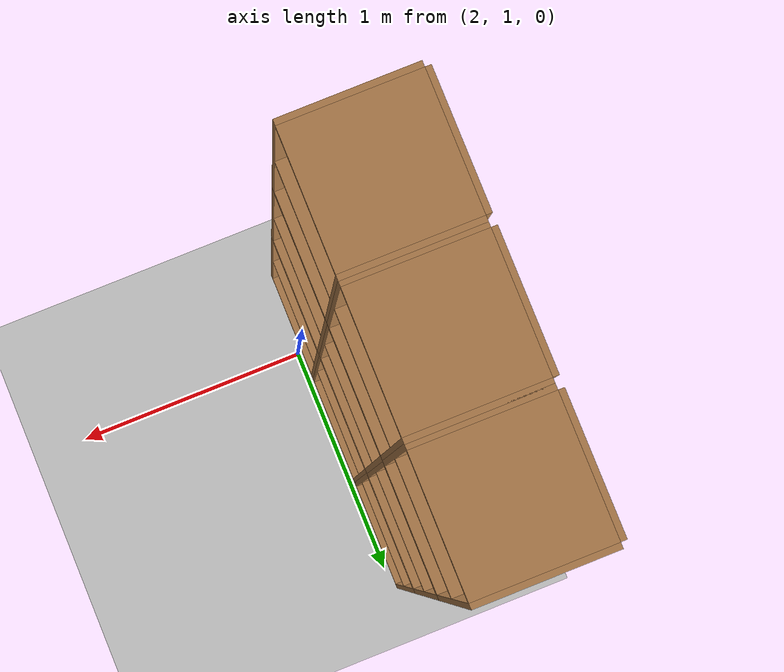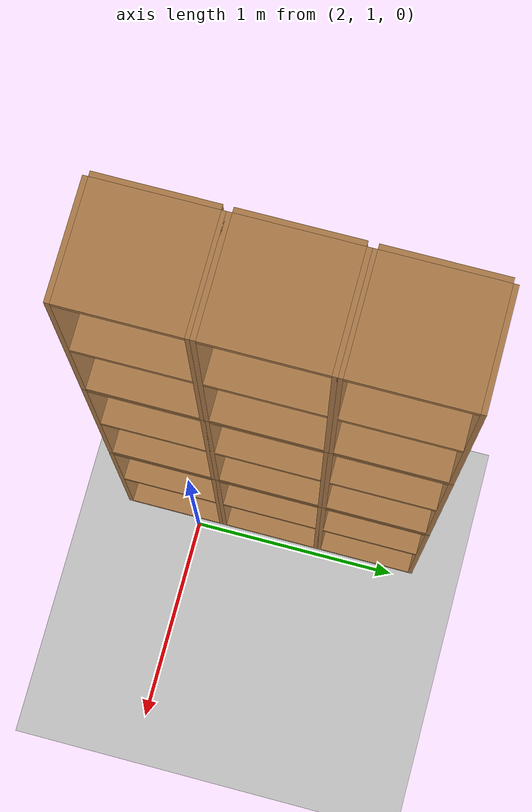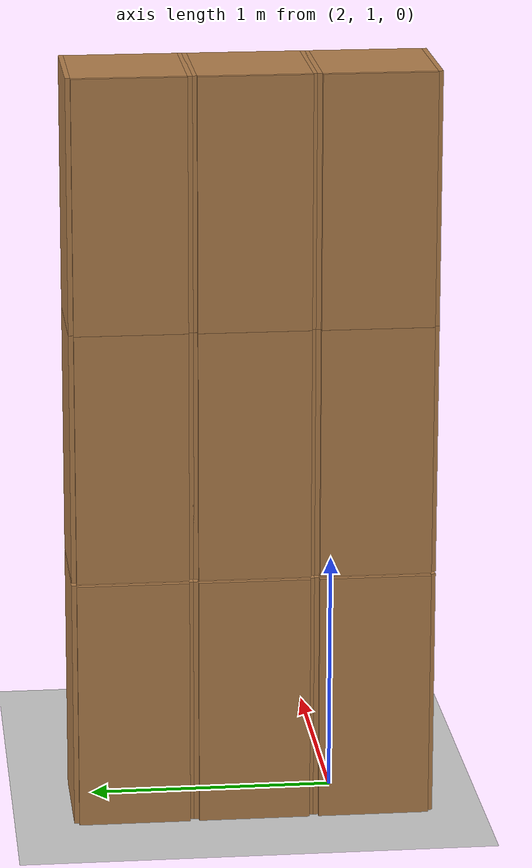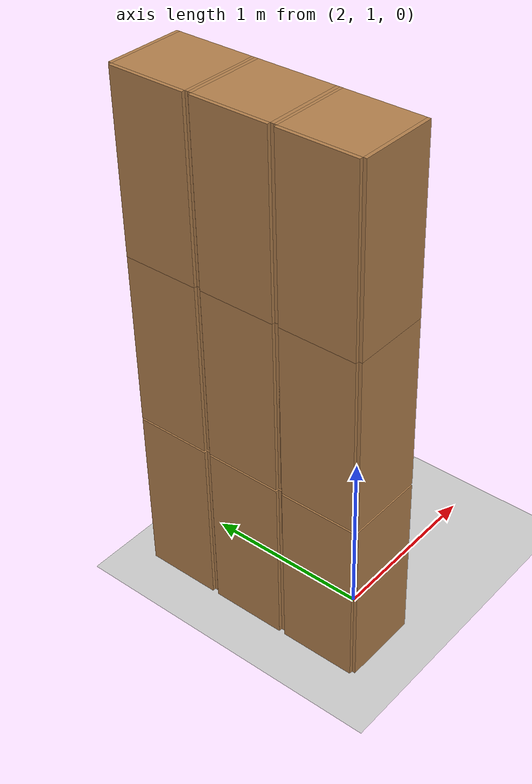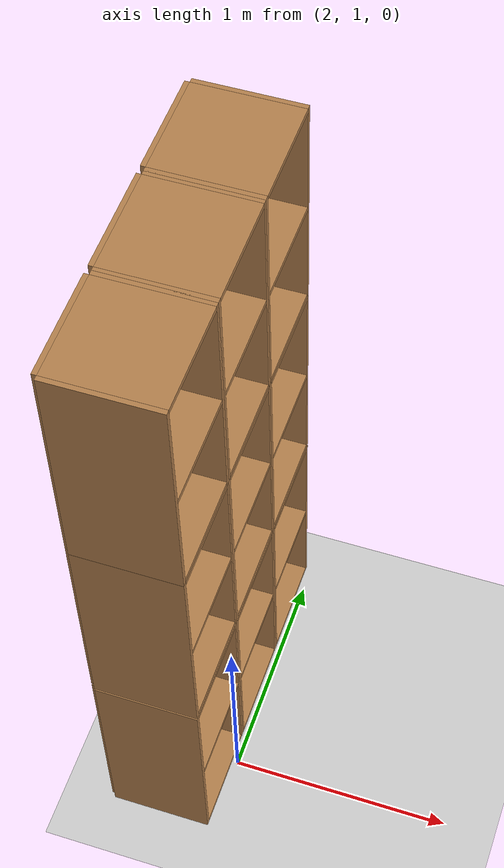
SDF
<sdf version="1.6">
 <world name="default">
  <model name="ground_plane">
   <static>1</static>
   <link name="link">
    <collision name="collision">
     <geometry><plane><normal>0 0 1</normal><size>100 100</size></plane></geometry>
     <surface>
      <contact><collide_bitmask>65535</collide_bitmask></contact>
      <friction><ode><mu>100</mu><mu2>50</mu2></ode></friction>
     </surface>
    </collision>
    <visual name="visual">
     <cast_shadows>0</cast_shadows>
     <geometry><plane><normal>0 0 1</normal><size>100 100</size></plane></geometry>
     <material>
      <script><uri>file://media/materials/scripts/gazebo.material</uri><name>Gazebo/Grey</name></script>
     </material>
    </visual>
   </link>
  </model>
  <model name="Locker18_clone_4_clone_2_clone_1_clone_clone">
   <model name="Locker18">
    <model name="Locker3">
     <model name="cabinet">
      <static>1</static>
      <link name="cabinet_bottom_plate">
       <inertial>
        <pose>0 0 -1 0 -0 0</pose>
        <inertia><ixx>2.05</ixx><ixy>0</ixy><ixz>0</ixz><iyy>2.05</iyy><iyz>0</iyz><izz>2.05</izz></inertia>
        <mass>25</mass>
       </inertial>
       <collision name="cabinet_bottom_plate_geom">
        <pose>0 0 0.01 0 -0 0</pose>
        <geometry><box><size>0.45 0.45 0.02</size></box></geometry>
       </collision>
       <visual name="cabinet_bottom_plate_geom_visual">
        <pose>0 0 0.01 0 -0 0</pose>
        <geometry><box><size>0.45 0.45 0.02</size></box></geometry>
        <material>
         <script><uri>file://media/materials/scripts/gazebo.material</uri><name>Gazebo/Wood</name></script>
        </material>
       </visual>
       <collision name="cabinet_bottom_plate_geom_cabinet_back_plate">
        <pose>0.235 0 0.51 0 -0 0</pose>
        <geometry><box><size>0.02 0.45 1.02</size></box></geometry>
       </collision>
       <visual name="cabinet_bottom_plate_geom_cabinet_back_plate_visual">
        <pose>0.235 0 0.51 0 -0 0</pose>
        <geometry><box><size>0.02 0.45 1.02</size></box></geometry>
        <material>
         <script><uri>file://media/materials/scripts/gazebo.material</uri><name>Gazebo/Wood</name></script>
        </material>
       </visual>
       <collision name="cabinet_bottom_plate_geom_cabinet_left_plate">
        <pose>0 0.235 0.51 0 -0 0</pose>
        <geometry><box><size>0.45 0.02 1.02</size></box></geometry>
       </collision>
       <visual name="cabinet_bottom_plate_geom_cabinet_left_plate_visual">
        <pose>0 0.235 0.51 0 -0 0</pose>
        <geometry><box><size>0.45 0.02 1.02</size></box></geometry>
        <material>
         <script><uri>file://media/materials/scripts/gazebo.material</uri><name>Gazebo/Wood</name></script>
        </material>
       </visual>
       <collision name="cabinet_bottom_plate_geom_cabinet_middle_plate">
        <pose>0 0 0.51 0 -0 0</pose>
        <geometry><box><size>0.45 0.45 0.02</size></box></geometry>
       </collision>
       <visual name="cabinet_bottom_plate_geom_cabinet_middle_plate_visual">
        <pose>0 0 0.51 0 -0 0</pose>
        <geometry><box><size>0.45 0.45 0.02</size></box></geometry>
        <material>
         <script><uri>file://media/materials/scripts/gazebo.material</uri><name>Gazebo/Wood</name></script>
        </material>
       </visual>
       <collision name="cabinet_bottom_plate_geom_cabinet_right_plate">
        <pose>0 -0.235 0.51 0 -0 0</pose>
        <geometry><box><size>0.45 0.02 1.02</size></box></geometry>
       </collision>
       <visual name="cabinet_bottom_plate_geom_cabinet_right_plate_visual">
        <pose>0 -0.235 0.51 0 -0 0</pose>
        <geometry><box><size>0.45 0.02 1.02</size></box></geometry>
        <material>
         <script><uri>file://media/materials/scripts/gazebo.material</uri><name>Gazebo/Wood</name></script>
        </material>
       </visual>
       <collision name="cabinet_bottom_plate_geom_cabinet_top_plate">
        <pose>0 0 1.01 0 -0 0</pose>
        <geometry><box><size>0.45 0.45 0.02</size></box></geometry>
       </collision>
       <visual name="cabinet_bottom_plate_geom_cabinet_top_plate_visual">
        <pose>0 0 1.01 0 -0 0</pose>
        <geometry><box><size>0.45 0.45 0.02</size></box></geometry>
        <material>
         <script><uri>file://media/materials/scripts/gazebo.material</uri><name>Gazebo/Wood</name></script>
        </material>
       </visual>
      </link>
      <pose>-0.676968 1.45758 0 0 -0 0</pose>
     </model>
     <model name="cabinet_clone">
      <static>1</static>
      <link name="cabinet_bottom_plate">
       <inertial>
        <pose>0 0 -1 0 -0 0</pose>
        <inertia><ixx>2.05</ixx><ixy>0</ixy><ixz>0</ixz><iyy>2.05</iyy><iyz>0</iyz><izz>2.05</izz></inertia>
        <mass>25</mass>
       </inertial>
       <collision name="cabinet_bottom_plate_geom">
        <pose>0 0 0.01 0 -0 0</pose>
        <geometry><box><size>0.45 0.45 0.02</size></box></geometry>
       </collision>
       <visual name="cabinet_bottom_plate_geom_visual">
        <pose>0 0 0.01 0 -0 0</pose>
        <geometry><box><size>0.45 0.45 0.02</size></box></geometry>
        <material>
         <script><uri>file://media/materials/scripts/gazebo.material</uri><name>Gazebo/Wood</name></script>
        </material>
       </visual>
       <collision name="cabinet_bottom_plate_geom_cabinet_back_plate">
        <pose>0.235 0 0.51 0 -0 0</pose>
        <geometry><box><size>0.02 0.45 1.02</size></box></geometry>
       </collision>
       <visual name="cabinet_bottom_plate_geom_cabinet_back_plate_visual">
        <pose>0.235 0 0.51 0 -0 0</pose>
        <geometry><box><size>0.02 0.45 1.02</size></box></geometry>
        <material>
         <script><uri>file://media/materials/scripts/gazebo.material</uri><name>Gazebo/Wood</name></script>
        </material>
       </visual>
       <collision name="cabinet_bottom_plate_geom_cabinet_left_plate">
        <pose>0 0.235 0.51 0 -0 0</pose>
        <geometry><box><size>0.45 0.02 1.02</size></box></geometry>
       </collision>
       <visual name="cabinet_bottom_plate_geom_cabinet_left_plate_visual">
        <pose>0 0.235 0.51 0 -0 0</pose>
        <geometry><box><size>0.45 0.02 1.02</size></box></geometry>
        <material>
         <script><uri>file://media/materials/scripts/gazebo.material</uri><name>Gazebo/Wood</name></script>
        </material>
       </visual>
       <collision name="cabinet_bottom_plate_geom_cabinet_middle_plate">
        <pose>0 0 0.51 0 -0 0</pose>
        <geometry><box><size>0.45 0.45 0.02</size></box></geometry>
       </collision>
       <visual name="cabinet_bottom_plate_geom_cabinet_middle_plate_visual">
        <pose>0 0 0.51 0 -0 0</pose>
        <geometry><box><size>0.45 0.45 0.02</size></box></geometry>
        <material>
         <script><uri>file://media/materials/scripts/gazebo.material</uri><name>Gazebo/Wood</name></script>
        </material>
       </visual>
       <collision name="cabinet_bottom_plate_geom_cabinet_right_plate">
        <pose>0 -0.235 0.51 0 -0 0</pose>
        <geometry><box><size>0.45 0.02 1.02</size></box></geometry>
       </collision>
       <visual name="cabinet_bottom_plate_geom_cabinet_right_plate_visual">
        <pose>0 -0.235 0.51 0 -0 0</pose>
        <geometry><box><size>0.45 0.02 1.02</size></box></geometry>
        <material>
         <script><uri>file://media/materials/scripts/gazebo.material</uri><name>Gazebo/Wood</name></script>
        </material>
       </visual>
       <collision name="cabinet_bottom_plate_geom_cabinet_top_plate">
        <pose>0 0 1.01 0 -0 0</pose>
        <geometry><box><size>0.45 0.45 0.02</size></box></geometry>
       </collision>
       <visual name="cabinet_bottom_plate_geom_cabinet_top_plate_visual">
        <pose>0 0 1.01 0 -0 0</pose>
        <geometry><box><size>0.45 0.45 0.02</size></box></geometry>
        <material>
         <script><uri>file://media/materials/scripts/gazebo.material</uri><name>Gazebo/Wood</name></script>
        </material>
       </visual>
      </link>
      <pose>-0.676968 0.970971 0 0 -0 0</pose>
     </model>
     <model name="cabinet_clone_0">
      <static>1</static>
      <link name="cabinet_bottom_plate">
       <inertial>
        <pose>0 0 -1 0 -0 0</pose>
        <inertia><ixx>2.05</ixx><ixy>0</ixy><ixz>0</ixz><iyy>2.05</iyy><iyz>0</iyz><izz>2.05</izz></inertia>
        <mass>25</mass>
       </inertial>
       <collision name="cabinet_bottom_plate_geom">
        <pose>0 0 0.01 0 -0 0</pose>
        <geometry><box><size>0.45 0.45 0.02</size></box></geometry>
       </collision>
       <visual name="cabinet_bottom_plate_geom_visual">
        <pose>0 0 0.01 0 -0 0</pose>
        <geometry><box><size>0.45 0.45 0.02</size></box></geometry>
        <material>
         <script><uri>file://media/materials/scripts/gazebo.material</uri><name>Gazebo/Wood</name></script>
        </material>
       </visual>
       <collision name="cabinet_bottom_plate_geom_cabinet_back_plate">
        <pose>0.235 0 0.51 0 -0 0</pose>
        <geometry><box><size>0.02 0.45 1.02</size></box></geometry>
       </collision>
       <visual name="cabinet_bottom_plate_geom_cabinet_back_plate_visual">
        <pose>0.235 0 0.51 0 -0 0</pose>
        <geometry><box><size>0.02 0.45 1.02</size></box></geometry>
        <material>
         <script><uri>file://media/materials/scripts/gazebo.material</uri><name>Gazebo/Wood</name></script>
        </material>
       </visual>
       <collision name="cabinet_bottom_plate_geom_cabinet_left_plate">
        <pose>0 0.235 0.51 0 -0 0</pose>
        <geometry><box><size>0.45 0.02 1.02</size></box></geometry>
       </collision>
       <visual name="cabinet_bottom_plate_geom_cabinet_left_plate_visual">
        <pose>0 0.235 0.51 0 -0 0</pose>
        <geometry><box><size>0.45 0.02 1.02</size></box></geometry>
        <material>
         <script><uri>file://media/materials/scripts/gazebo.material</uri><name>Gazebo/Wood</name></script>
        </material>
       </visual>
       <collision name="cabinet_bottom_plate_geom_cabinet_middle_plate">
        <pose>0 0 0.51 0 -0 0</pose>
        <geometry><box><size>0.45 0.45 0.02</size></box></geometry>
       </collision>
       <visual name="cabinet_bottom_plate_geom_cabinet_middle_plate_visual">
        <pose>0 0 0.51 0 -0 0</pose>
        <geometry><box><size>0.45 0.45 0.02</size></box></geometry>
        <material>
         <script><uri>file://media/materials/scripts/gazebo.material</uri><name>Gazebo/Wood</name></script>
        </material>
       </visual>
       <collision name="cabinet_bottom_plate_geom_cabinet_right_plate">
        <pose>0 -0.235 0.51 0 -0 0</pose>
        <geometry><box><size>0.45 0.02 1.02</size></box></geometry>
       </collision>
       <visual name="cabinet_bottom_plate_geom_cabinet_right_plate_visual">
        <pose>0 -0.235 0.51 0 -0 0</pose>
        <geometry><box><size>0.45 0.02 1.02</size></box></geometry>
        <material>
         <script><uri>file://media/materials/scripts/gazebo.material</uri><name>Gazebo/Wood</name></script>
        </material>
       </visual>
       <collision name="cabinet_bottom_plate_geom_cabinet_top_plate">
        <pose>0 0 1.01 0 -0 0</pose>
        <geometry><box><size>0.45 0.45 0.02</size></box></geometry>
       </collision>
       <visual name="cabinet_bottom_plate_geom_cabinet_top_plate_visual">
        <pose>0 0 1.01 0 -0 0</pose>
        <geometry><box><size>0.45 0.45 0.02</size></box></geometry>
        <material>
         <script><uri>file://media/materials/scripts/gazebo.material</uri><name>Gazebo/Wood</name></script>
        </material>
       </visual>
      </link>
      <pose>-0.676968 0.48391 0 0 -0 0</pose>
     </model>
     <static>0</static>
     <pose>0 3e-06 -1.02763 0 -0 0</pose>
    </model>
    <model name="Locker3_clone">
     <model name="cabinet">
      <static>1</static>
      <link name="cabinet_bottom_plate">
       <inertial>
        <pose>0 0 -1 0 -0 0</pose>
        <inertia><ixx>2.05</ixx><ixy>0</ixy><ixz>0</ixz><iyy>2.05</iyy><iyz>0</iyz><izz>2.05</izz></inertia>
        <mass>25</mass>
       </inertial>
       <collision name="cabinet_bottom_plate_geom">
        <pose>0 0 0.01 0 -0 0</pose>
        <geometry><box><size>0.45 0.45 0.02</size></box></geometry>
       </collision>
       <visual name="cabinet_bottom_plate_geom_visual">
        <pose>0 0 0.01 0 -0 0</pose>
        <geometry><box><size>0.45 0.45 0.02</size></box></geometry>
        <material>
         <script><uri>file://media/materials/scripts/gazebo.material</uri><name>Gazebo/Wood</name></script>
        </material>
       </visual>
       <collision name="cabinet_bottom_plate_geom_cabinet_back_plate">
        <pose>0.235 0 0.51 0 -0 0</pose>
        <geometry><box><size>0.02 0.45 1.02</size></box></geometry>
       </collision>
       <visual name="cabinet_bottom_plate_geom_cabinet_back_plate_visual">
        <pose>0.235 0 0.51 0 -0 0</pose>
        <geometry><box><size>0.02 0.45 1.02</size></box></geometry>
        <material>
         <script><uri>file://media/materials/scripts/gazebo.material</uri><name>Gazebo/Wood</name></script>
        </material>
       </visual>
       <collision name="cabinet_bottom_plate_geom_cabinet_left_plate">
        <pose>0 0.235 0.51 0 -0 0</pose>
        <geometry><box><size>0.45 0.02 1.02</size></box></geometry>
       </collision>
       <visual name="cabinet_bottom_plate_geom_cabinet_left_plate_visual">
        <pose>0 0.235 0.51 0 -0 0</pose>
        <geometry><box><size>0.45 0.02 1.02</size></box></geometry>
        <material>
         <script><uri>file://media/materials/scripts/gazebo.material</uri><name>Gazebo/Wood</name></script>
        </material>
       </visual>
       <collision name="cabinet_bottom_plate_geom_cabinet_middle_plate">
        <pose>0 0 0.51 0 -0 0</pose>
        <geometry><box><size>0.45 0.45 0.02</size></box></geometry>
       </collision>
       <visual name="cabinet_bottom_plate_geom_cabinet_middle_plate_visual">
        <pose>0 0 0.51 0 -0 0</pose>
        <geometry><box><size>0.45 0.45 0.02</size></box></geometry>
        <material>
         <script><uri>file://media/materials/scripts/gazebo.material</uri><name>Gazebo/Wood</name></script>
        </material>
       </visual>
       <collision name="cabinet_bottom_plate_geom_cabinet_right_plate">
        <pose>0 -0.235 0.51 0 -0 0</pose>
        <geometry><box><size>0.45 0.02 1.02</size></box></geometry>
       </collision>
       <visual name="cabinet_bottom_plate_geom_cabinet_right_plate_visual">
        <pose>0 -0.235 0.51 0 -0 0</pose>
        <geometry><box><size>0.45 0.02 1.02</size></box></geometry>
        <material>
         <script><uri>file://media/materials/scripts/gazebo.material</uri><name>Gazebo/Wood</name></script>
        </material>
       </visual>
       <collision name="cabinet_bottom_plate_geom_cabinet_top_plate">
        <pose>0 0 1.01 0 -0 0</pose>
        <geometry><box><size>0.45 0.45 0.02</size></box></geometry>
       </collision>
       <visual name="cabinet_bottom_plate_geom_cabinet_top_plate_visual">
        <pose>0 0 1.01 0 -0 0</pose>
        <geometry><box><size>0.45 0.45 0.02</size></box></geometry>
        <material>
         <script><uri>file://media/materials/scripts/gazebo.material</uri><name>Gazebo/Wood</name></script>
        </material>
       </visual>
      </link>
      <pose>-0.676968 1.45758 0 0 -0 0</pose>
     </model>
     <model name="cabinet_clone">
      <static>1</static>
      <link name="cabinet_bottom_plate">
       <inertial>
        <pose>0 0 -1 0 -0 0</pose>
        <inertia><ixx>2.05</ixx><ixy>0</ixy><ixz>0</ixz><iyy>2.05</iyy><iyz>0</iyz><izz>2.05</izz></inertia>
        <mass>25</mass>
       </inertial>
       <collision name="cabinet_bottom_plate_geom">
        <pose>0 0 0.01 0 -0 0</pose>
        <geometry><box><size>0.45 0.45 0.02</size></box></geometry>
       </collision>
       <visual name="cabinet_bottom_plate_geom_visual">
        <pose>0 0 0.01 0 -0 0</pose>
        <geometry><box><size>0.45 0.45 0.02</size></box></geometry>
        <material>
         <script><uri>file://media/materials/scripts/gazebo.material</uri><name>Gazebo/Wood</name></script>
        </material>
       </visual>
       <collision name="cabinet_bottom_plate_geom_cabinet_back_plate">
        <pose>0.235 0 0.51 0 -0 0</pose>
        <geometry><box><size>0.02 0.45 1.02</size></box></geometry>
       </collision>
       <visual name="cabinet_bottom_plate_geom_cabinet_back_plate_visual">
        <pose>0.235 0 0.51 0 -0 0</pose>
        <geometry><box><size>0.02 0.45 1.02</size></box></geometry>
        <material>
         <script><uri>file://media/materials/scripts/gazebo.material</uri><name>Gazebo/Wood</name></script>
        </material>
       </visual>
       <collision name="cabinet_bottom_plate_geom_cabinet_left_plate">
        <pose>0 0.235 0.51 0 -0 0</pose>
        <geometry><box><size>0.45 0.02 1.02</size></box></geometry>
       </collision>
       <visual name="cabinet_bottom_plate_geom_cabinet_left_plate_visual">
        <pose>0 0.235 0.51 0 -0 0</pose>
        <geometry><box><size>0.45 0.02 1.02</size></box></geometry>
        <material>
         <script><uri>file://media/materials/scripts/gazebo.material</uri><name>Gazebo/Wood</name></script>
        </material>
       </visual>
       <collision name="cabinet_bottom_plate_geom_cabinet_middle_plate">
        <pose>0 0 0.51 0 -0 0</pose>
        <geometry><box><size>0.45 0.45 0.02</size></box></geometry>
       </collision>
       <visual name="cabinet_bottom_plate_geom_cabinet_middle_plate_visual">
        <pose>0 0 0.51 0 -0 0</pose>
        <geometry><box><size>0.45 0.45 0.02</size></box></geometry>
        <material>
         <script><uri>file://media/materials/scripts/gazebo.material</uri><name>Gazebo/Wood</name></script>
        </material>
       </visual>
       <collision name="cabinet_bottom_plate_geom_cabinet_right_plate">
        <pose>0 -0.235 0.51 0 -0 0</pose>
        <geometry><box><size>0.45 0.02 1.02</size></box></geometry>
       </collision>
       <visual name="cabinet_bottom_plate_geom_cabinet_right_plate_visual">
        <pose>0 -0.235 0.51 0 -0 0</pose>
        <geometry><box><size>0.45 0.02 1.02</size></box></geometry>
        <material>
         <script><uri>file://media/materials/scripts/gazebo.material</uri><name>Gazebo/Wood</name></script>
        </material>
       </visual>
       <collision name="cabinet_bottom_plate_geom_cabinet_top_plate">
        <pose>0 0 1.01 0 -0 0</pose>
        <geometry><box><size>0.45 0.45 0.02</size></box></geometry>
       </collision>
       <visual name="cabinet_bottom_plate_geom_cabinet_top_plate_visual">
        <pose>0 0 1.01 0 -0 0</pose>
        <geometry><box><size>0.45 0.45 0.02</size></box></geometry>
        <material>
         <script><uri>file://media/materials/scripts/gazebo.material</uri><name>Gazebo/Wood</name></script>
        </material>
       </visual>
      </link>
      <pose>-0.676968 0.970971 0 0 -0 0</pose>
     </model>
     <model name="cabinet_clone_0">
      <static>1</static>
      <link name="cabinet_bottom_plate">
       <inertial>
        <pose>0 0 -1 0 -0 0</pose>
        <inertia><ixx>2.05</ixx><ixy>0</ixy><ixz>0</ixz><iyy>2.05</iyy><iyz>0</iyz><izz>2.05</izz></inertia>
        <mass>25</mass>
       </inertial>
       <collision name="cabinet_bottom_plate_geom">
        <pose>0 0 0.01 0 -0 0</pose>
        <geometry><box><size>0.45 0.45 0.02</size></box></geometry>
       </collision>
       <visual name="cabinet_bottom_plate_geom_visual">
        <pose>0 0 0.01 0 -0 0</pose>
        <geometry><box><size>0.45 0.45 0.02</size></box></geometry>
        <material>
         <script><uri>file://media/materials/scripts/gazebo.material</uri><name>Gazebo/Wood</name></script>
        </material>
       </visual>
       <collision name="cabinet_bottom_plate_geom_cabinet_back_plate">
        <pose>0.235 0 0.51 0 -0 0</pose>
        <geometry><box><size>0.02 0.45 1.02</size></box></geometry>
       </collision>
       <visual name="cabinet_bottom_plate_geom_cabinet_back_plate_visual">
        <pose>0.235 0 0.51 0 -0 0</pose>
        <geometry><box><size>0.02 0.45 1.02</size></box></geometry>
        <material>
         <script><uri>file://media/materials/scripts/gazebo.material</uri><name>Gazebo/Wood</name></script>
        </material>
       </visual>
       <collision name="cabinet_bottom_plate_geom_cabinet_left_plate">
        <pose>0 0.235 0.51 0 -0 0</pose>
        <geometry><box><size>0.45 0.02 1.02</size></box></geometry>
       </collision>
       <visual name="cabinet_bottom_plate_geom_cabinet_left_plate_visual">
        <pose>0 0.235 0.51 0 -0 0</pose>
        <geometry><box><size>0.45 0.02 1.02</size></box></geometry>
        <material>
         <script><uri>file://media/materials/scripts/gazebo.material</uri><name>Gazebo/Wood</name></script>
        </material>
       </visual>
       <collision name="cabinet_bottom_plate_geom_cabinet_middle_plate">
        <pose>0 0 0.51 0 -0 0</pose>
        <geometry><box><size>0.45 0.45 0.02</size></box></geometry>
       </collision>
       <visual name="cabinet_bottom_plate_geom_cabinet_middle_plate_visual">
        <pose>0 0 0.51 0 -0 0</pose>
        <geometry><box><size>0.45 0.45 0.02</size></box></geometry>
        <material>
         <script><uri>file://media/materials/scripts/gazebo.material</uri><name>Gazebo/Wood</name></script>
        </material>
       </visual>
       <collision name="cabinet_bottom_plate_geom_cabinet_right_plate">
        <pose>0 -0.235 0.51 0 -0 0</pose>
        <geometry><box><size>0.45 0.02 1.02</size></box></geometry>
       </collision>
       <visual name="cabinet_bottom_plate_geom_cabinet_right_plate_visual">
        <pose>0 -0.235 0.51 0 -0 0</pose>
        <geometry><box><size>0.45 0.02 1.02</size></box></geometry>
        <material>
         <script><uri>file://media/materials/scripts/gazebo.material</uri><name>Gazebo/Wood</name></script>
        </material>
       </visual>
       <collision name="cabinet_bottom_plate_geom_cabinet_top_plate">
        <pose>0 0 1.01 0 -0 0</pose>
        <geometry><box><size>0.45 0.45 0.02</size></box></geometry>
       </collision>
       <visual name="cabinet_bottom_plate_geom_cabinet_top_plate_visual">
        <pose>0 0 1.01 0 -0 0</pose>
        <geometry><box><size>0.45 0.45 0.02</size></box></geometry>
        <material>
         <script><uri>file://media/materials/scripts/gazebo.material</uri><name>Gazebo/Wood</name></script>
        </material>
       </visual>
      </link>
      <pose>-0.676968 0.48391 0 0 -0 0</pose>
     </model>
     <static>0</static>
     <pose>0 3e-06 0.003717 0 -0 0</pose>
    </model>
    <model name="Locker3_clone_clone">
     <model name="cabinet">
      <static>1</static>
      <link name="cabinet_bottom_plate">
       <inertial>
        <pose>0 0 -1 0 -0 0</pose>
        <inertia><ixx>2.05</ixx><ixy>0</ixy><ixz>0</ixz><iyy>2.05</iyy><iyz>0</iyz><izz>2.05</izz></inertia>
        <mass>25</mass>
       </inertial>
       <collision name="cabinet_bottom_plate_geom">
        <pose>0 0 0.01 0 -0 0</pose>
        <geometry><box><size>0.45 0.45 0.02</size></box></geometry>
       </collision>
       <visual name="cabinet_bottom_plate_geom_visual">
        <pose>0 0 0.01 0 -0 0</pose>
        <geometry><box><size>0.45 0.45 0.02</size></box></geometry>
        <material>
         <script><uri>file://media/materials/scripts/gazebo.material</uri><name>Gazebo/Wood</name></script>
        </material>
       </visual>
       <collision name="cabinet_bottom_plate_geom_cabinet_back_plate">
        <pose>0.235 0 0.51 0 -0 0</pose>
        <geometry><box><size>0.02 0.45 1.02</size></box></geometry>
       </collision>
       <visual name="cabinet_bottom_plate_geom_cabinet_back_plate_visual">
        <pose>0.235 0 0.51 0 -0 0</pose>
        <geometry><box><size>0.02 0.45 1.02</size></box></geometry>
        <material>
         <script><uri>file://media/materials/scripts/gazebo.material</uri><name>Gazebo/Wood</name></script>
        </material>
       </visual>
       <collision name="cabinet_bottom_plate_geom_cabinet_left_plate">
        <pose>0 0.235 0.51 0 -0 0</pose>
        <geometry><box><size>0.45 0.02 1.02</size></box></geometry>
       </collision>
       <visual name="cabinet_bottom_plate_geom_cabinet_left_plate_visual">
        <pose>0 0.235 0.51 0 -0 0</pose>
        <geometry><box><size>0.45 0.02 1.02</size></box></geometry>
        <material>
         <script><uri>file://media/materials/scripts/gazebo.material</uri><name>Gazebo/Wood</name></script>
        </material>
       </visual>
       <collision name="cabinet_bottom_plate_geom_cabinet_middle_plate">
        <pose>0 0 0.51 0 -0 0</pose>
        <geometry><box><size>0.45 0.45 0.02</size></box></geometry>
       </collision>
       <visual name="cabinet_bottom_plate_geom_cabinet_middle_plate_visual">
        <pose>0 0 0.51 0 -0 0</pose>
        <geometry><box><size>0.45 0.45 0.02</size></box></geometry>
        <material>
         <script><uri>file://media/materials/scripts/gazebo.material</uri><name>Gazebo/Wood</name></script>
        </material>
       </visual>
       <collision name="cabinet_bottom_plate_geom_cabinet_right_plate">
        <pose>0 -0.235 0.51 0 -0 0</pose>
        <geometry><box><size>0.45 0.02 1.02</size></box></geometry>
       </collision>
       <visual name="cabinet_bottom_plate_geom_cabinet_right_plate_visual">
        <pose>0 -0.235 0.51 0 -0 0</pose>
        <geometry><box><size>0.45 0.02 1.02</size></box></geometry>
        <material>
         <script><uri>file://media/materials/scripts/gazebo.material</uri><name>Gazebo/Wood</name></script>
        </material>
       </visual>
       <collision name="cabinet_bottom_plate_geom_cabinet_top_plate">
        <pose>0 0 1.01 0 -0 0</pose>
        <geometry><box><size>0.45 0.45 0.02</size></box></geometry>
       </collision>
       <visual name="cabinet_bottom_plate_geom_cabinet_top_plate_visual">
        <pose>0 0 1.01 0 -0 0</pose>
        <geometry><box><size>0.45 0.45 0.02</size></box></geometry>
        <material>
         <script><uri>file://media/materials/scripts/gazebo.material</uri><name>Gazebo/Wood</name></script>
        </material>
       </visual>
      </link>
      <pose>-0.676968 1.45758 0 0 -0 0</pose>
     </model>
     <model name="cabinet_clone">
      <static>1</static>
      <link name="cabinet_bottom_plate">
       <inertial>
        <pose>0 0 -1 0 -0 0</pose>
        <inertia><ixx>2.05</ixx><ixy>0</ixy><ixz>0</ixz><iyy>2.05</iyy><iyz>0</iyz><izz>2.05</izz></inertia>
        <mass>25</mass>
       </inertial>
       <collision name="cabinet_bottom_plate_geom">
        <pose>0 0 0.01 0 -0 0</pose>
        <geometry><box><size>0.45 0.45 0.02</size></box></geometry>
       </collision>
       <visual name="cabinet_bottom_plate_geom_visual">
        <pose>0 0 0.01 0 -0 0</pose>
        <geometry><box><size>0.45 0.45 0.02</size></box></geometry>
        <material>
         <script><uri>file://media/materials/scripts/gazebo.material</uri><name>Gazebo/Wood</name></script>
        </material>
       </visual>
       <collision name="cabinet_bottom_plate_geom_cabinet_back_plate">
        <pose>0.235 0 0.51 0 -0 0</pose>
        <geometry><box><size>0.02 0.45 1.02</size></box></geometry>
       </collision>
       <visual name="cabinet_bottom_plate_geom_cabinet_back_plate_visual">
        <pose>0.235 0 0.51 0 -0 0</pose>
        <geometry><box><size>0.02 0.45 1.02</size></box></geometry>
        <material>
         <script><uri>file://media/materials/scripts/gazebo.material</uri><name>Gazebo/Wood</name></script>
        </material>
       </visual>
       <collision name="cabinet_bottom_plate_geom_cabinet_left_plate">
        <pose>0 0.235 0.51 0 -0 0</pose>
        <geometry><box><size>0.45 0.02 1.02</size></box></geometry>
       </collision>
       <visual name="cabinet_bottom_plate_geom_cabinet_left_plate_visual">
        <pose>0 0.235 0.51 0 -0 0</pose>
        <geometry><box><size>0.45 0.02 1.02</size></box></geometry>
        <material>
         <script><uri>file://media/materials/scripts/gazebo.material</uri><name>Gazebo/Wood</name></script>
        </material>
       </visual>
       <collision name="cabinet_bottom_plate_geom_cabinet_middle_plate">
        <pose>0 0 0.51 0 -0 0</pose>
        <geometry><box><size>0.45 0.45 0.02</size></box></geometry>
       </collision>
       <visual name="cabinet_bottom_plate_geom_cabinet_middle_plate_visual">
        <pose>0 0 0.51 0 -0 0</pose>
        <geometry><box><size>0.45 0.45 0.02</size></box></geometry>
        <material>
         <script><uri>file://media/materials/scripts/gazebo.material</uri><name>Gazebo/Wood</name></script>
        </material>
       </visual>
       <collision name="cabinet_bottom_plate_geom_cabinet_right_plate">
        <pose>0 -0.235 0.51 0 -0 0</pose>
        <geometry><box><size>0.45 0.02 1.02</size></box></geometry>
       </collision>
       <visual name="cabinet_bottom_plate_geom_cabinet_right_plate_visual">
        <pose>0 -0.235 0.51 0 -0 0</pose>
        <geometry><box><size>0.45 0.02 1.02</size></box></geometry>
        <material>
         <script><uri>file://media/materials/scripts/gazebo.material</uri><name>Gazebo/Wood</name></script>
        </material>
       </visual>
       <collision name="cabinet_bottom_plate_geom_cabinet_top_plate">
        <pose>0 0 1.01 0 -0 0</pose>
        <geometry><box><size>0.45 0.45 0.02</size></box></geometry>
       </collision>
       <visual name="cabinet_bottom_plate_geom_cabinet_top_plate_visual">
        <pose>0 0 1.01 0 -0 0</pose>
        <geometry><box><size>0.45 0.45 0.02</size></box></geometry>
        <material>
         <script><uri>file://media/materials/scripts/gazebo.material</uri><name>Gazebo/Wood</name></script>
        </material>
       </visual>
      </link>
      <pose>-0.676968 0.970971 0 0 -0 0</pose>
     </model>
     <model name="cabinet_clone_0">
      <static>1</static>
      <link name="cabinet_bottom_plate">
       <inertial>
        <pose>0 0 -1 0 -0 0</pose>
        <inertia><ixx>2.05</ixx><ixy>0</ixy><ixz>0</ixz><iyy>2.05</iyy><iyz>0</iyz><izz>2.05</izz></inertia>
        <mass>25</mass>
       </inertial>
       <collision name="cabinet_bottom_plate_geom">
        <pose>0 0 0.01 0 -0 0</pose>
        <geometry><box><size>0.45 0.45 0.02</size></box></geometry>
       </collision>
       <visual name="cabinet_bottom_plate_geom_visual">
        <pose>0 0 0.01 0 -0 0</pose>
        <geometry><box><size>0.45 0.45 0.02</size></box></geometry>
        <material>
         <script><uri>file://media/materials/scripts/gazebo.material</uri><name>Gazebo/Wood</name></script>
        </material>
       </visual>
       <collision name="cabinet_bottom_plate_geom_cabinet_back_plate">
        <pose>0.235 0 0.51 0 -0 0</pose>
        <geometry><box><size>0.02 0.45 1.02</size></box></geometry>
       </collision>
       <visual name="cabinet_bottom_plate_geom_cabinet_back_plate_visual">
        <pose>0.235 0 0.51 0 -0 0</pose>
        <geometry><box><size>0.02 0.45 1.02</size></box></geometry>
        <material>
         <script><uri>file://media/materials/scripts/gazebo.material</uri><name>Gazebo/Wood</name></script>
        </material>
       </visual>
       <collision name="cabinet_bottom_plate_geom_cabinet_left_plate">
        <pose>0 0.235 0.51 0 -0 0</pose>
        <geometry><box><size>0.45 0.02 1.02</size></box></geometry>
       </collision>
       <visual name="cabinet_bottom_plate_geom_cabinet_left_plate_visual">
        <pose>0 0.235 0.51 0 -0 0</pose>
        <geometry><box><size>0.45 0.02 1.02</size></box></geometry>
        <material>
         <script><uri>file://media/materials/scripts/gazebo.material</uri><name>Gazebo/Wood</name></script>
        </material>
       </visual>
       <collision name="cabinet_bottom_plate_geom_cabinet_middle_plate">
        <pose>0 0 0.51 0 -0 0</pose>
        <geometry><box><size>0.45 0.45 0.02</size></box></geometry>
       </collision>
       <visual name="cabinet_bottom_plate_geom_cabinet_middle_plate_visual">
        <pose>0 0 0.51 0 -0 0</pose>
        <geometry><box><size>0.45 0.45 0.02</size></box></geometry>
        <material>
         <script><uri>file://media/materials/scripts/gazebo.material</uri><name>Gazebo/Wood</name></script>
        </material>
       </visual>
       <collision name="cabinet_bottom_plate_geom_cabinet_right_plate">
        <pose>0 -0.235 0.51 0 -0 0</pose>
        <geometry><box><size>0.45 0.02 1.02</size></box></geometry>
       </collision>
       <visual name="cabinet_bottom_plate_geom_cabinet_right_plate_visual">
        <pose>0 -0.235 0.51 0 -0 0</pose>
        <geometry><box><size>0.45 0.02 1.02</size></box></geometry>
        <material>
         <script><uri>file://media/materials/scripts/gazebo.material</uri><name>Gazebo/Wood</name></script>
        </material>
       </visual>
       <collision name="cabinet_bottom_plate_geom_cabinet_top_plate">
        <pose>0 0 1.01 0 -0 0</pose>
        <geometry><box><size>0.45 0.45 0.02</size></box></geometry>
       </collision>
       <visual name="cabinet_bottom_plate_geom_cabinet_top_plate_visual">
        <pose>0 0 1.01 0 -0 0</pose>
        <geometry><box><size>0.45 0.45 0.02</size></box></geometry>
        <material>
         <script><uri>file://media/materials/scripts/gazebo.material</uri><name>Gazebo/Wood</name></script>
        </material>
       </visual>
      </link>
      <pose>-0.676968 0.48391 0 0 -0 0</pose>
     </model>
     <static>0</static>
     <pose>0 3e-06 1.02391 0 -0 0</pose>
    </model>
    <static>0</static>
    <pose>-0 4e-06 4e-06 0 -0 0</pose>
   </model>
   <static>0</static>
   <pose>1.08177 2.33863 1.08672 0 -0 3.14119</pose>
  </model>
 </world>
</sdf>
